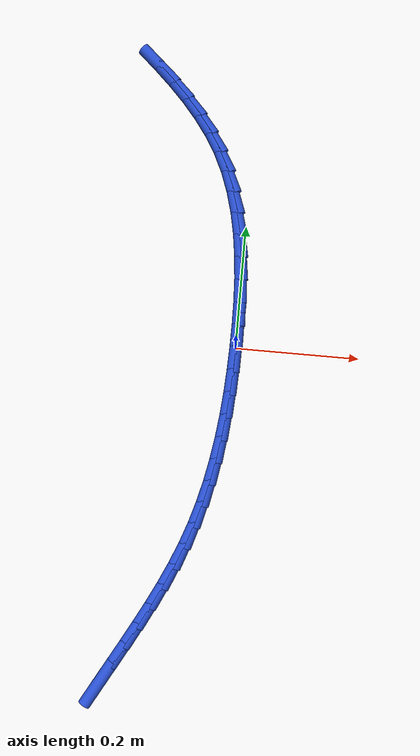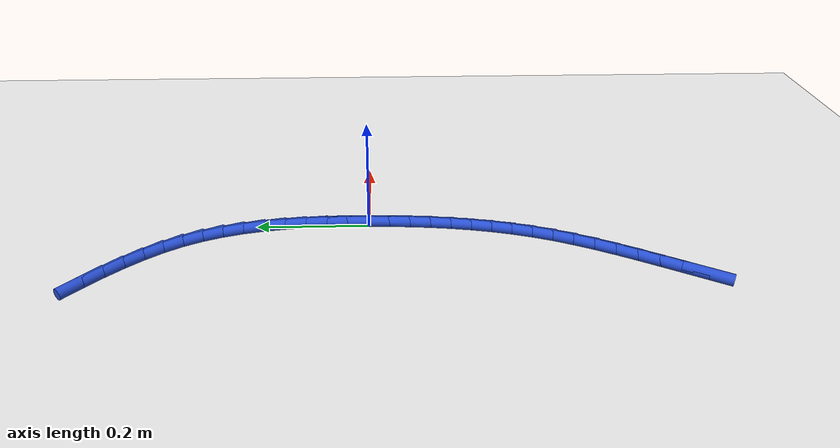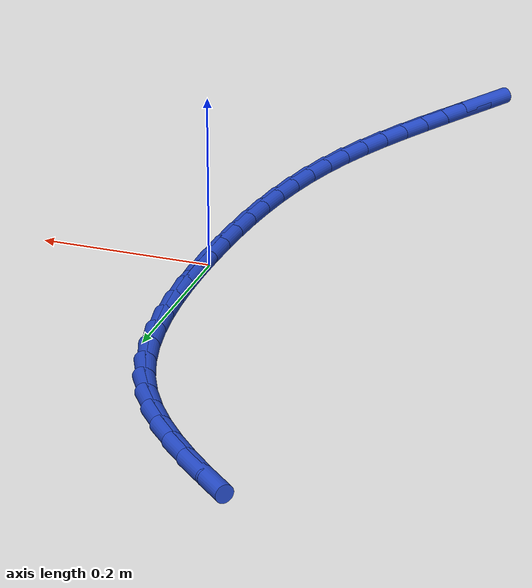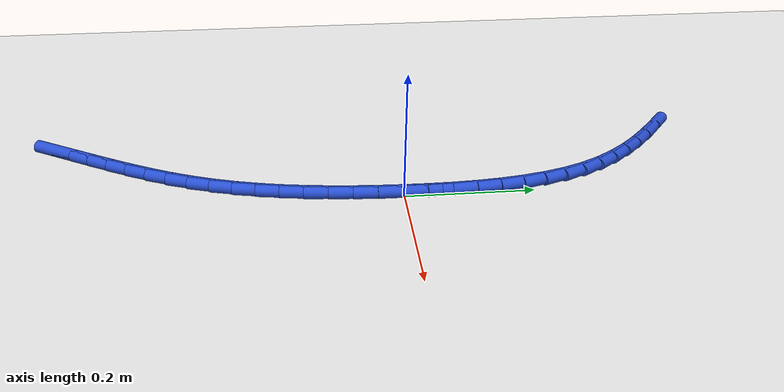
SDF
<sdf version="1.6">
 <world name="default">
  <model name="ground_plane">
   <static>1</static>
   <link name="link">
    <collision name="collision">
     <geometry><plane><normal>0 0 1</normal><size>100 100</size></plane></geometry>
     <surface><friction><ode><mu>100</mu><mu2>50</mu2></ode></friction></surface>
    </collision>
    <visual name="visual">
     <cast_shadows>0</cast_shadows>
     <geometry><plane><normal>0 0 1</normal><size>100 100</size></plane></geometry>
     <material>
      <script><uri>file://media/materials/scripts/gazebo.material</uri><name>Gazebo/WhiteGlow</name></script>
     </material>
    </visual>
   </link>
  </model>
  <model name="line">
   <link name="link_0">
    <pose>-1.0842021724855044e-17 -6.938893903907228e-18 0.01 0 1.57 1.5599165693631913</pose>
    <collision name="collision">
     <geometry><cylinder><radius>0.01</radius><length>0.08</length></cylinder></geometry>
    </collision>
    <visual name="visual">
     <material>
      <script><name>Gazebo/Blue</name><uri>file://media/materials/scripts/gazebo.material</uri></script>
     </material>
     <geometry><cylinder><radius>0.01</radius><length>0.08</length></cylinder></geometry>
    </visual>
   </link>
   <link name="link_1">
    <pose>0.0004083220893479926 0.037528959710256535 0.01 0 1.57 -1.5551008602522687</pose>
    <collision name="collision">
     <geometry><cylinder><radius>0.01</radius><length>0.08</length></cylinder></geometry>
    </collision>
    <visual name="visual">
     <material>
      <script><name>Gazebo/Blue</name><uri>file://media/materials/scripts/gazebo.material</uri></script>
     </material>
     <geometry><cylinder><radius>0.01</radius><length>0.08</length></cylinder></geometry>
    </visual>
   </link>
   <link name="link_2">
    <pose>-0.00018199198772292239 0.07513635420890721 0.01 0 1.57 -1.5213480015440761</pose>
    <collision name="collision">
     <geometry><cylinder><radius>0.01</radius><length>0.08</length></cylinder></geometry>
    </collision>
    <visual name="visual">
     <material>
      <script><name>Gazebo/Blue</name><uri>file://media/materials/scripts/gazebo.material</uri></script>
     </material>
     <geometry><cylinder><radius>0.01</radius><length>0.08</length></cylinder></geometry>
    </visual>
   </link>
   <link name="link_3">
    <pose>-0.0020345984019626466 0.11257131686752371 0.01 0 1.57 -1.479765093921134</pose>
    <collision name="collision">
     <geometry><cylinder><radius>0.01</radius><length>0.08</length></cylinder></geometry>
    </collision>
    <visual name="visual">
     <material>
      <script><name>Gazebo/Blue</name><uri>file://media/materials/scripts/gazebo.material</uri></script>
     </material>
     <geometry><cylinder><radius>0.01</radius><length>0.08</length></cylinder></geometry>
    </visual>
   </link>
   <link name="link_4">
    <pose>-0.0054131533241210785 0.14958298105767795 0.01 0 1.57 -1.4295172410705077</pose>
    <collision name="collision">
     <geometry><cylinder><radius>0.01</radius><length>0.08</length></cylinder></geometry>
    </collision>
    <visual name="visual">
     <material>
      <script><name>Gazebo/Blue</name><uri>file://media/materials/scripts/gazebo.material</uri></script>
     </material>
     <geometry><cylinder><radius>0.01</radius><length>0.08</length></cylinder></geometry>
    </visual>
   </link>
   <link name="link_5">
    <pose>-0.010581312924948105 0.18592048015094145 0.01 0 1.57 -1.3696314081925747</pose>
    <collision name="collision">
     <geometry><cylinder><radius>0.01</radius><length>0.08</length></cylinder></geometry>
    </collision>
    <visual name="visual">
     <material>
      <script><name>Gazebo/Blue</name><uri>file://media/materials/scripts/gazebo.material</uri></script>
     </material>
     <geometry><cylinder><radius>0.01</radius><length>0.08</length></cylinder></geometry>
    </visual>
   </link>
   <link name="link_6">
    <pose>-0.017802733375193613 0.22133294751888621 0.01 0 1.57 -1.2990855193037376</pose>
    <collision name="collision">
     <geometry><cylinder><radius>0.01</radius><length>0.08</length></cylinder></geometry>
    </collision>
    <visual name="visual">
     <material>
      <script><name>Gazebo/Blue</name><uri>file://media/materials/scripts/gazebo.material</uri></script>
     </material>
     <geometry><cylinder><radius>0.01</radius><length>0.08</length></cylinder></geometry>
    </visual>
   </link>
   <link name="link_7">
    <pose>-0.027341070845607517 0.25556951653308385 0.01 0 1.57 -1.2169719109412405</pose>
    <collision name="collision">
     <geometry><cylinder><radius>0.01</radius><length>0.08</length></cylinder></geometry>
    </collision>
    <visual name="visual">
     <material>
      <script><name>Gazebo/Blue</name><uri>file://media/materials/scripts/gazebo.material</uri></script>
     </material>
     <geometry><cylinder><radius>0.01</radius><length>0.08</length></cylinder></geometry>
    </visual>
   </link>
   <link name="link_8">
    <pose>-0.03945998150693969 0.28837932056510623 0.01 0 1.57 -1.122912732611828</pose>
    <collision name="collision">
     <geometry><cylinder><radius>0.01</radius><length>0.08</length></cylinder></geometry>
    </collision>
    <visual name="visual">
     <material>
      <script><name>Gazebo/Blue</name><uri>file://media/materials/scripts/gazebo.material</uri></script>
     </material>
     <geometry><cylinder><radius>0.01</radius><length>0.08</length></cylinder></geometry>
    </visual>
   </link>
   <link name="link_9">
    <pose>-0.0544189589920853 0.31951483123892943 0.01 0 1.57 -1.0257252138878534</pose>
    <collision name="collision">
     <geometry><cylinder><radius>0.01</radius><length>0.08</length></cylinder></geometry>
    </collision>
    <visual name="visual">
     <material>
      <script><name>Gazebo/Blue</name><uri>file://media/materials/scripts/gazebo.material</uri></script>
     </material>
     <geometry><cylinder><radius>0.01</radius><length>0.08</length></cylinder></geometry>
    </visual>
   </link>
   <link name="link_10">
    <pose>-0.07224537632955454 0.3489146751620366 0.01 0 1.57 -0.9398377868183616</pose>
    <collision name="collision">
     <geometry><cylinder><radius>0.01</radius><length>0.08</length></cylinder></geometry>
    </collision>
    <visual name="visual">
     <material>
      <script><name>Gazebo/Blue</name><uri>file://media/materials/scripts/gazebo.material</uri></script>
     </material>
     <geometry><cylinder><radius>0.01</radius><length>0.08</length></cylinder></geometry>
    </visual>
   </link>
   <link name="link_11">
    <pose>-0.09261660742854755 0.37679816957881124 0.01 0 1.57 -0.8674778385324577</pose>
    <collision name="collision">
     <geometry><cylinder><radius>0.01</radius><length>0.08</length></cylinder></geometry>
    </collision>
    <visual name="visual">
     <material>
      <script><name>Gazebo/Blue</name><uri>file://media/materials/scripts/gazebo.material</uri></script>
     </material>
     <geometry><cylinder><radius>0.01</radius><length>0.08</length></cylinder></geometry>
    </visual>
   </link>
   <link name="link_12">
    <pose>-0.11518103435650628 0.4034078824736506 0.01 0 1.57 -0.8088510228906319</pose>
    <collision name="collision">
     <geometry><cylinder><radius>0.01</radius><length>0.08</length></cylinder></geometry>
    </collision>
    <visual name="visual">
     <material>
      <script><name>Gazebo/Blue</name><uri>file://media/materials/scripts/gazebo.material</uri></script>
     </material>
     <geometry><cylinder><radius>0.01</radius><length>0.08</length></cylinder></geometry>
    </visual>
   </link>
   <link name="link_13">
    <pose>-0.13958703918087262 0.42898638183095195 0.01 0 1.57 -0.763578737884439</pose>
    <collision name="collision">
     <geometry><cylinder><radius>0.01</radius><length>0.08</length></cylinder></geometry>
    </collision>
    <visual name="visual">
     <material>
      <script><name>Gazebo/Blue</name><uri>file://media/materials/scripts/gazebo.material</uri></script>
     </material>
     <geometry><cylinder><radius>0.01</radius><length>0.08</length></cylinder></geometry>
    </visual>
   </link>
   <link name="link_14">
    <pose>-0.16548300396908855 0.45377623563511243 0.01 0 1.57 -0.731032231703578</pose>
    <collision name="collision">
     <geometry><cylinder><radius>0.01</radius><length>0.08</length></cylinder></geometry>
    </collision>
    <visual name="visual">
     <material>
      <script><name>Gazebo/Blue</name><uri>file://media/materials/scripts/gazebo.material</uri></script>
     </material>
     <geometry><cylinder><radius>0.01</radius><length>0.08</length></cylinder></geometry>
    </visual>
   </link>
   <link name="link_184">
    <pose>-0.1683515958018799 -0.54646184454 0.01 0 1.57 1.058747915276915</pose>
    <collision name="collision">
     <geometry><cylinder><radius>0.01</radius><length>0.08</length></cylinder></geometry>
    </collision>
    <visual name="visual">
     <material>
      <script><name>Gazebo/Blue</name><uri>file://media/materials/scripts/gazebo.material</uri></script>
     </material>
     <geometry><cylinder><radius>0.01</radius><length>0.08</length></cylinder></geometry>
    </visual>
   </link>
   <link name="link_185">
    <pose>-0.15061430018081357 -0.5149036912715161 0.01 0 1.57 1.0584849441665651</pose>
    <collision name="collision">
     <geometry><cylinder><radius>0.01</radius><length>0.08</length></cylinder></geometry>
    </collision>
    <visual name="visual">
     <material>
      <script><name>Gazebo/Blue</name><uri>file://media/materials/scripts/gazebo.material</uri></script>
     </material>
     <geometry><cylinder><radius>0.01</radius><length>0.08</length></cylinder></geometry>
    </visual>
   </link>
   <link name="link_186">
    <pose>-0.13279028416312902 -0.483210760896777 0.01 0 1.57 1.066473861129288</pose>
    <collision name="collision">
     <geometry><cylinder><radius>0.01</radius><length>0.08</length></cylinder></geometry>
    </collision>
    <visual name="visual">
     <material>
      <script><name>Gazebo/Blue</name><uri>file://media/materials/scripts/gazebo.material</uri></script>
     </material>
     <geometry><cylinder><radius>0.01</radius><length>0.08</length></cylinder></geometry>
    </visual>
   </link>
   <link name="link_187">
    <pose>-0.11518971391266668 -0.45132152770311557 0.01 0 1.57 1.0827333577708413</pose>
    <collision name="collision">
     <geometry><cylinder><radius>0.01</radius><length>0.08</length></cylinder></geometry>
    </collision>
    <visual name="visual">
     <material>
      <script><name>Gazebo/Blue</name><uri>file://media/materials/scripts/gazebo.material</uri></script>
     </material>
     <geometry><cylinder><radius>0.01</radius><length>0.08</length></cylinder></geometry>
    </visual>
   </link>
   <link name="link_188">
    <pose>-0.0981227555932673 -0.4191744659778653 0.01 0 1.57 1.1073958408299762</pose>
    <collision name="collision">
     <geometry><cylinder><radius>0.01</radius><length>0.08</length></cylinder></geometry>
    </collision>
    <visual name="visual">
     <material>
      <script><name>Gazebo/Blue</name><uri>file://media/materials/scripts/gazebo.material</uri></script>
     </material>
     <geometry><cylinder><radius>0.01</radius><length>0.08</length></cylinder></geometry>
    </visual>
   </link>
   <link name="link_189">
    <pose>-0.08189957536877149 -0.38670805000835917 0.01 0 1.57 1.1406762139759858</pose>
    <collision name="collision">
     <geometry><cylinder><radius>0.01</radius><length>0.08</length></cylinder></geometry>
    </collision>
    <visual name="visual">
     <material>
      <script><name>Gazebo/Blue</name><uri>file://media/materials/scripts/gazebo.material</uri></script>
     </material>
     <geometry><cylinder><radius>0.01</radius><length>0.08</length></cylinder></geometry>
    </visual>
   </link>
   <link name="link_190">
    <pose>-0.06683033940301984 -0.3538607540819307 0.01 0 1.57 1.1828221870748798</pose>
    <collision name="collision">
     <geometry><cylinder><radius>0.01</radius><length>0.08</length></cylinder></geometry>
    </collision>
    <visual name="visual">
     <material>
      <script><name>Gazebo/Blue</name><uri>file://media/materials/scripts/gazebo.material</uri></script>
     </material>
     <geometry><cylinder><radius>0.01</radius><length>0.08</length></cylinder></geometry>
    </visual>
   </link>
   <link name="link_191">
    <pose>-0.053225213859853 -0.32057105248591294 0.01 0 1.57 1.2334541570217359</pose>
    <collision name="collision">
     <geometry><cylinder><radius>0.01</radius><length>0.08</length></cylinder></geometry>
    </collision>
    <visual name="visual">
     <material>
      <script><name>Gazebo/Blue</name><uri>file://media/materials/scripts/gazebo.material</uri></script>
     </material>
     <geometry><cylinder><radius>0.01</radius><length>0.08</length></cylinder></geometry>
    </visual>
   </link>
   <link name="link_192">
    <pose>-0.041373512209838224 -0.28678138430034555 0.01 0 1.57 1.285478511925925</pose>
    <collision name="collision">
     <geometry><cylinder><radius>0.01</radius><length>0.08</length></cylinder></geometry>
    </collision>
    <visual name="visual">
     <material>
      <script><name>Gazebo/Blue</name><uri>file://media/materials/scripts/gazebo.material</uri></script>
     </material>
     <geometry><cylinder><radius>0.01</radius><length>0.08</length></cylinder></geometry>
    </visual>
   </link>
   <link name="link_193">
    <pose>-0.03131280730140985 -0.25248205289642817 0.01 0 1.57 1.3338866884536311</pose>
    <collision name="collision">
     <geometry><cylinder><radius>0.01</radius><length>0.08</length></cylinder></geometry>
    </collision>
    <visual name="visual">
     <material>
      <script><name>Gazebo/Blue</name><uri>file://media/materials/scripts/gazebo.material</uri></script>
     </material>
     <geometry><cylinder><radius>0.01</radius><length>0.08</length></cylinder></geometry>
    </visual>
   </link>
   <link name="link_194">
    <pose>-0.022913716747593307 -0.21769510540578932 0.01 0 1.57 1.378329938749008</pose>
    <collision name="collision">
     <geometry><cylinder><radius>0.01</radius><length>0.08</length></cylinder></geometry>
    </collision>
    <visual name="visual">
     <material>
      <script><name>Gazebo/Blue</name><uri>file://media/materials/scripts/gazebo.material</uri></script>
     </material>
     <geometry><cylinder><radius>0.01</radius><length>0.08</length></cylinder></geometry>
    </visual>
   </link>
   <link name="link_195">
    <pose>-0.016043864211396763 -0.1824431582098433 0.01 0 1.57 1.4186518276450195</pose>
    <collision name="collision">
     <geometry><cylinder><radius>0.01</radius><length>0.08</length></cylinder></geometry>
    </collision>
    <visual name="visual">
     <material>
      <script><name>Gazebo/Blue</name><uri>file://media/materials/scripts/gazebo.material</uri></script>
     </material>
     <geometry><cylinder><radius>0.01</radius><length>0.08</length></cylinder></geometry>
    </visual>
   </link>
   <link name="link_196">
    <pose>-0.010570873355828386 -0.14674882769000422 0.01 0 1.57 1.4547859892704047</pose>
    <collision name="collision">
     <geometry><cylinder><radius>0.01</radius><length>0.08</length></cylinder></geometry>
    </collision>
    <visual name="visual">
     <material>
      <script><name>Gazebo/Blue</name><uri>file://media/materials/scripts/gazebo.material</uri></script>
     </material>
     <geometry><cylinder><radius>0.01</radius><length>0.08</length></cylinder></geometry>
    </visual>
   </link>
   <link name="link_197">
    <pose>-0.0063623678438963485 -0.11063473022768615 0.01 0 1.57 1.4867360117846242</pose>
    <collision name="collision">
     <geometry><cylinder><radius>0.01</radius><length>0.08</length></cylinder></geometry>
    </collision>
    <visual name="visual">
     <material>
      <script><name>Gazebo/Blue</name><uri>file://media/materials/scripts/gazebo.material</uri></script>
     </material>
     <geometry><cylinder><radius>0.01</radius><length>0.08</length></cylinder></geometry>
    </visual>
   </link>
   <link name="link_198">
    <pose>-0.003285971338608824 -0.07412348220430327 0.01 0 1.57 1.5145558525451492</pose>
    <collision name="collision">
     <geometry><cylinder><radius>0.01</radius><length>0.08</length></cylinder></geometry>
    </collision>
    <visual name="visual">
     <material>
      <script><name>Gazebo/Blue</name><uri>file://media/materials/scripts/gazebo.material</uri></script>
     </material>
     <geometry><cylinder><radius>0.01</radius><length>0.08</length></cylinder></geometry>
    </visual>
   </link>
   <link name="link_199">
    <pose>-0.0012093075029739832 -0.0372377000012698 0.01 0 1.57 1.5383323819152668</pose>
    <collision name="collision">
     <geometry><cylinder><radius>0.01</radius><length>0.08</length></cylinder></geometry>
    </collision>
    <visual name="visual">
     <material>
      <script><name>Gazebo/Blue</name><uri>file://media/materials/scripts/gazebo.material</uri></script>
     </material>
     <geometry><cylinder><radius>0.01</radius><length>0.08</length></cylinder></geometry>
    </visual>
   </link>
   <link name="link_200">
    <pose>1.3010426069826053e-18 1.5959455978986625e-16 0.01 0 1.57 1.5581708234008544</pose>
    <collision name="collision">
     <geometry><cylinder><radius>0.01</radius><length>0.08</length></cylinder></geometry>
    </collision>
    <visual name="visual">
     <material>
      <script><name>Gazebo/Blue</name><uri>file://media/materials/scripts/gazebo.material</uri></script>
     </material>
     <geometry><cylinder><radius>0.01</radius><length>0.08</length></cylinder></geometry>
    </visual>
   </link>
   <link name="link_201">
    <pose>0.0004743275073049616 0.037567001418093285 0.01 0 1.57 1.558170823400854</pose>
    <collision name="collision">
     <geometry><cylinder><radius>0.01</radius><length>0.08</length></cylinder></geometry>
    </collision>
    <visual name="visual">
     <material>
      <script><name>Gazebo/Blue</name><uri>file://media/materials/scripts/gazebo.material</uri></script>
     </material>
     <geometry><cylinder><radius>0.01</radius><length>0.08</length></cylinder></geometry>
    </visual>
   </link>
  </model>
 </world>
</sdf>
